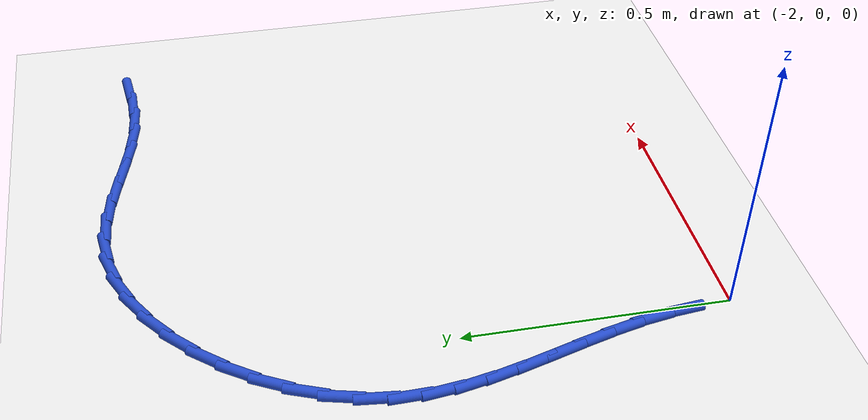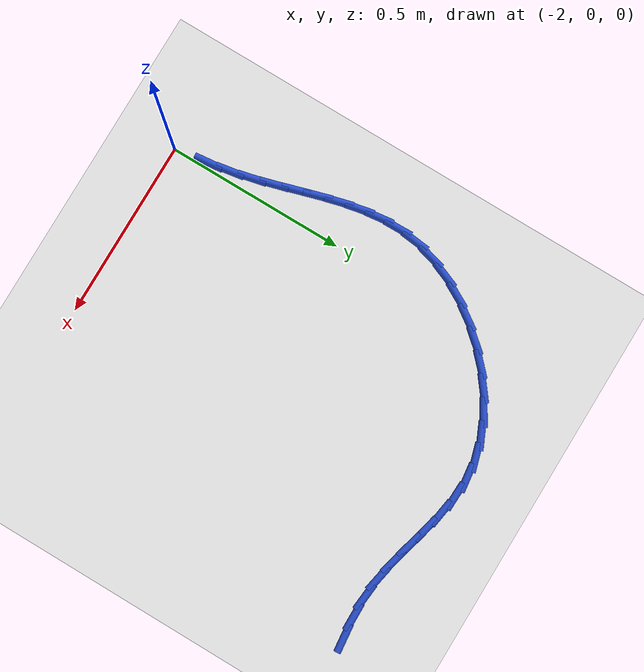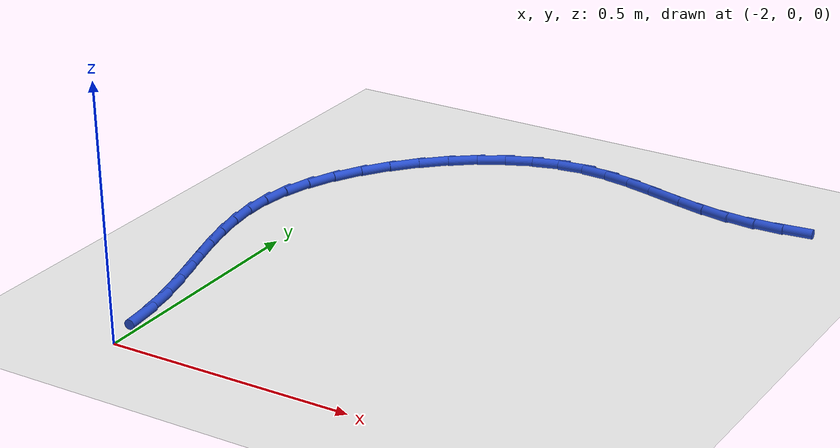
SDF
<sdf version="1.6">
 <world name="default">
  <model name="ground_plane">
   <static>1</static>
   <link name="link">
    <collision name="collision">
     <geometry><plane><normal>0 0 1</normal><size>100 100</size></plane></geometry>
     <surface><friction><ode><mu>100</mu><mu2>50</mu2></ode></friction></surface>
    </collision>
    <visual name="visual">
     <cast_shadows>0</cast_shadows>
     <geometry><plane><normal>0 0 1</normal><size>100 100</size></plane></geometry>
     <material>
      <script><uri>file://media/materials/scripts/gazebo.material</uri><name>Gazebo/WhiteGlow</name></script>
     </material>
    </visual>
   </link>
  </model>
  <model name="line">
   <link name="link_31">
    <pose>-1.137741604532638 1.039188508452282 0.01 0 1.57 0.10335012758137246</pose>
    <collision name="collision">
     <geometry><cylinder><radius>0.01</radius><length>0.08</length></cylinder></geometry>
    </collision>
    <visual name="visual">
     <material>
      <script><name>Gazebo/Blue</name><uri>file://media/materials/scripts/gazebo.material</uri></script>
     </material>
     <geometry><cylinder><radius>0.01</radius><length>0.08</length></cylinder></geometry>
    </visual>
   </link>
   <link name="link_32">
    <pose>-1.1969148215525718 1.0330510815530156 0.01 0 1.57 0.017549319328291096</pose>
    <collision name="collision">
     <geometry><cylinder><radius>0.01</radius><length>0.08</length></cylinder></geometry>
    </collision>
    <visual name="visual">
     <material>
      <script><name>Gazebo/Blue</name><uri>file://media/materials/scripts/gazebo.material</uri></script>
     </material>
     <geometry><cylinder><radius>0.01</radius><length>0.08</length></cylinder></geometry>
    </visual>
   </link>
   <link name="link_33">
    <pose>-1.255742268676193 1.0320185939012951 0.01 0 1.57 -0.09216025055007221</pose>
    <collision name="collision">
     <geometry><cylinder><radius>0.01</radius><length>0.08</length></cylinder></geometry>
    </collision>
    <visual name="visual">
     <material>
      <script><name>Gazebo/Blue</name><uri>file://media/materials/scripts/gazebo.material</uri></script>
     </material>
     <geometry><cylinder><radius>0.01</radius><length>0.08</length></cylinder></geometry>
    </visual>
   </link>
   <link name="link_34">
    <pose>-1.3139873943791713 1.0374017284884665 0.01 0 1.57 -0.1892157656551599</pose>
    <collision name="collision">
     <geometry><cylinder><radius>0.01</radius><length>0.08</length></cylinder></geometry>
    </collision>
    <visual name="visual">
     <material>
      <script><name>Gazebo/Blue</name><uri>file://media/materials/scripts/gazebo.material</uri></script>
     </material>
     <geometry><cylinder><radius>0.01</radius><length>0.08</length></cylinder></geometry>
    </visual>
   </link>
   <link name="link_35">
    <pose>-1.3716159554920813 1.0484379851633696 0.01 0 1.57 -0.24377706209478078</pose>
    <collision name="collision">
     <geometry><cylinder><radius>0.01</radius><length>0.08</length></cylinder></geometry>
    </collision>
    <visual name="visual">
     <material>
      <script><name>Gazebo/Blue</name><uri>file://media/materials/scripts/gazebo.material</uri></script>
     </material>
     <geometry><cylinder><radius>0.01</radius><length>0.08</length></cylinder></geometry>
    </visual>
   </link>
   <link name="link_36">
    <pose>-1.4287609250467634 1.062651292381387 0.01 0 1.57 -0.2559341354734553</pose>
    <collision name="collision">
     <geometry><cylinder><radius>0.01</radius><length>0.08</length></cylinder></geometry>
    </collision>
    <visual name="visual">
     <material>
      <script><name>Gazebo/Blue</name><uri>file://media/materials/scripts/gazebo.material</uri></script>
     </material>
     <geometry><cylinder><radius>0.01</radius><length>0.08</length></cylinder></geometry>
    </visual>
   </link>
   <link name="link_37">
    <pose>-1.4855602963114591 1.0775141330237372 0.01 0 1.57 -0.22554388001280945</pose>
    <collision name="collision">
     <geometry><cylinder><radius>0.01</radius><length>0.08</length></cylinder></geometry>
    </collision>
    <visual name="visual">
     <material>
      <script><name>Gazebo/Blue</name><uri>file://media/materials/scripts/gazebo.material</uri></script>
     </material>
     <geometry><cylinder><radius>0.01</radius><length>0.08</length></cylinder></geometry>
    </visual>
   </link>
   <link name="link_38">
    <pose>-1.5421520625544094 1.090498989971639 0.01 0 1.57 -0.15063764705388685</pose>
    <collision name="collision">
     <geometry><cylinder><radius>0.01</radius><length>0.08</length></cylinder></geometry>
    </collision>
    <visual name="visual">
     <material>
      <script><name>Gazebo/Blue</name><uri>file://media/materials/scripts/gazebo.material</uri></script>
     </material>
     <geometry><cylinder><radius>0.01</radius><length>0.08</length></cylinder></geometry>
    </visual>
   </link>
   <link name="link_39">
    <pose>-1.598674217043856 1.0990783461063123 0.01 0 1.57 -0.029083908628776443</pose>
    <collision name="collision">
     <geometry><cylinder><radius>0.01</radius><length>0.08</length></cylinder></geometry>
    </collision>
    <visual name="visual">
     <material>
      <script><name>Gazebo/Blue</name><uri>file://media/materials/scripts/gazebo.material</uri></script>
     </material>
     <geometry><cylinder><radius>0.01</radius><length>0.08</length></cylinder></geometry>
    </visual>
   </link>
   <link name="link_40">
    <pose>-1.6552647530480398 1.1007246843089753 0.01 0 1.57 0.1321388955263723</pose>
    <collision name="collision">
     <geometry><cylinder><radius>0.01</radius><length>0.08</length></cylinder></geometry>
    </collision>
    <visual name="visual">
     <material>
      <script><name>Gazebo/Blue</name><uri>file://media/materials/scripts/gazebo.material</uri></script>
     </material>
     <geometry><cylinder><radius>0.01</radius><length>0.08</length></cylinder></geometry>
    </visual>
   </link>
   <link name="link_41">
    <pose>-1.7119844299706246 1.0931858801166556 0.01 0 1.57 0.289931894746646</pose>
    <collision name="collision">
     <geometry><cylinder><radius>0.01</radius><length>0.08</length></cylinder></geometry>
    </collision>
    <visual name="visual">
     <material>
      <script><name>Gazebo/Blue</name><uri>file://media/materials/scripts/gazebo.material</uri></script>
     </material>
     <geometry><cylinder><radius>0.01</radius><length>0.08</length></cylinder></geometry>
    </visual>
   </link>
   <link name="link_42">
    <pose>-1.7682825818912509 1.0763899672745911 0.01 0 1.57 0.4277133986426459</pose>
    <collision name="collision">
     <geometry><cylinder><radius>0.01</radius><length>0.08</length></cylinder></geometry>
    </collision>
    <visual name="visual">
     <material>
      <script><name>Gazebo/Blue</name><uri>file://media/materials/scripts/gazebo.material</uri></script>
     </material>
     <geometry><cylinder><radius>0.01</radius><length>0.08</length></cylinder></geometry>
    </visual>
   </link>
   <link name="link_43">
    <pose>-1.8233177576571955 1.051301831922351 0.01 0 1.57 0.5494247786139049</pose>
    <collision name="collision">
     <geometry><cylinder><radius>0.01</radius><length>0.08</length></cylinder></geometry>
    </collision>
    <visual name="visual">
     <material>
      <script><name>Gazebo/Blue</name><uri>file://media/materials/scripts/gazebo.material</uri></script>
     </material>
     <geometry><cylinder><radius>0.01</radius><length>0.08</length></cylinder></geometry>
    </visual>
   </link>
   <link name="link_44">
    <pose>-1.876246734940053 1.0188926756775336 0.01 0 1.57 0.6596202401362196</pose>
    <collision name="collision">
     <geometry><cylinder><radius>0.01</radius><length>0.08</length></cylinder></geometry>
    </collision>
    <visual name="visual">
     <material>
      <script><name>Gazebo/Blue</name><uri>file://media/materials/scripts/gazebo.material</uri></script>
     </material>
     <geometry><cylinder><radius>0.01</radius><length>0.08</length></cylinder></geometry>
    </visual>
   </link>
   <link name="link_45">
    <pose>-1.9262262914114174 0.9801337001577348 0.01 0 1.57 0.7627136373137245</pose>
    <collision name="collision">
     <geometry><cylinder><radius>0.01</radius><length>0.08</length></cylinder></geometry>
    </collision>
    <visual name="visual">
     <material>
      <script><name>Gazebo/Blue</name><uri>file://media/materials/scripts/gazebo.material</uri></script>
     </material>
     <geometry><cylinder><radius>0.01</radius><length>0.08</length></cylinder></geometry>
    </visual>
   </link>
   <link name="link_46">
    <pose>-1.9724132047428848 0.9359961069805531 0.01 0 1.57 0.8628706237281559</pose>
    <collision name="collision">
     <geometry><cylinder><radius>0.01</radius><length>0.08</length></cylinder></geometry>
    </collision>
    <visual name="visual">
     <material>
      <script><name>Gazebo/Blue</name><uri>file://media/materials/scripts/gazebo.material</uri></script>
     </material>
     <geometry><cylinder><radius>0.01</radius><length>0.08</length></cylinder></geometry>
    </visual>
   </link>
   <link name="link_47">
    <pose>-2.01396425260605 0.887451097763585 0.01 0 1.57 0.9641476410529625</pose>
    <collision name="collision">
     <geometry><cylinder><radius>0.01</radius><length>0.08</length></cylinder></geometry>
    </collision>
    <visual name="visual">
     <material>
      <script><name>Gazebo/Blue</name><uri>file://media/materials/scripts/gazebo.material</uri></script>
     </material>
     <geometry><cylinder><radius>0.01</radius><length>0.08</length></cylinder></geometry>
    </visual>
   </link>
   <link name="link_48">
    <pose>-2.0500362126725067 0.8354698741244274 0.01 0 1.57 1.070718030847716</pose>
    <collision name="collision">
     <geometry><cylinder><radius>0.01</radius><length>0.08</length></cylinder></geometry>
    </collision>
    <visual name="visual">
     <material>
      <script><name>Gazebo/Blue</name><uri>file://media/materials/scripts/gazebo.material</uri></script>
     </material>
     <geometry><cylinder><radius>0.01</radius><length>0.08</length></cylinder></geometry>
    </visual>
   </link>
   <link name="link_49">
    <pose>-2.0797858626138503 0.7810236376806785 0.01 0 1.57 1.1870871500699545</pose>
    <collision name="collision">
     <geometry><cylinder><radius>0.01</radius><length>0.08</length></cylinder></geometry>
    </collision>
    <visual name="visual">
     <material>
      <script><name>Gazebo/Blue</name><uri>file://media/materials/scripts/gazebo.material</uri></script>
     </material>
     <geometry><cylinder><radius>0.01</radius><length>0.08</length></cylinder></geometry>
    </visual>
   </link>
   <link name="link_50">
    <pose>-2.1023699801016766 0.7250835900499345 0.01 0 1.57 1.3181694379027875</pose>
    <collision name="collision">
     <geometry><cylinder><radius>0.01</radius><length>0.08</length></cylinder></geometry>
    </collision>
    <visual name="visual">
     <material>
      <script><name>Gazebo/Blue</name><uri>file://media/materials/scripts/gazebo.material</uri></script>
     </material>
     <geometry><cylinder><radius>0.01</radius><length>0.08</length></cylinder></geometry>
    </visual>
   </link>
   <link name="link_51">
    <pose>-2.1169453642786635 0.6686209219575349 0.01 0 1.57 1.4619917857292566</pose>
    <collision name="collision">
     <geometry><cylinder><radius>0.01</radius><length>0.08</length></cylinder></geometry>
    </collision>
    <visual name="visual">
     <material>
      <script><name>Gazebo/Blue</name><uri>file://media/materials/scripts/gazebo.material</uri></script>
     </material>
     <geometry><cylinder><radius>0.01</radius><length>0.08</length></cylinder></geometry>
    </visual>
   </link>
   <link name="link_52">
    <pose>-2.123087307980669 0.6123945227139441 0.01 0 1.57 -1.548921061706147</pose>
    <collision name="collision">
     <geometry><cylinder><radius>0.01</radius><length>0.08</length></cylinder></geometry>
    </collision>
    <visual name="visual">
     <material>
      <script><name>Gazebo/Blue</name><uri>file://media/materials/scripts/gazebo.material</uri></script>
     </material>
     <geometry><cylinder><radius>0.01</radius><length>0.08</length></cylinder></geometry>
    </visual>
   </link>
   <link name="link_53">
    <pose>-2.1218623655697546 0.5564067662098786 0.01 0 1.57 -1.442853335138481</pose>
    <collision name="collision">
     <geometry><cylinder><radius>0.01</radius><length>0.08</length></cylinder></geometry>
    </collision>
    <visual name="visual">
     <material>
      <script><name>Gazebo/Blue</name><uri>file://media/materials/scripts/gazebo.material</uri></script>
     </material>
     <geometry><cylinder><radius>0.01</radius><length>0.08</length></cylinder></geometry>
    </visual>
   </link>
   <link name="link_54">
    <pose>-2.114669117959303 0.5004915896122262 0.01 0 1.57 -1.3637844092763327</pose>
    <collision name="collision">
     <geometry><cylinder><radius>0.01</radius><length>0.08</length></cylinder></geometry>
    </collision>
    <visual name="visual">
     <material>
      <script><name>Gazebo/Blue</name><uri>file://media/materials/scripts/gazebo.material</uri></script>
     </material>
     <geometry><cylinder><radius>0.01</radius><length>0.08</length></cylinder></geometry>
    </visual>
   </link>
   <link name="link_55">
    <pose>-2.1029061460626974 0.44448293008787626 0.01 0 1.57 -1.3113680212519834</pose>
    <collision name="collision">
     <geometry><cylinder><radius>0.01</radius><length>0.08</length></cylinder></geometry>
    </collision>
    <visual name="visual">
     <material>
      <script><name>Gazebo/Blue</name><uri>file://media/materials/scripts/gazebo.material</uri></script>
     </material>
     <geometry><cylinder><radius>0.01</radius><length>0.08</length></cylinder></geometry>
    </visual>
   </link>
   <link name="link_56">
    <pose>-2.0879720307933214 0.38821472480371677 0.01 0 1.57 -1.2842250366272352</pose>
    <collision name="collision">
     <geometry><cylinder><radius>0.01</radius><length>0.08</length></cylinder></geometry>
    </collision>
    <visual name="visual">
     <material>
      <script><name>Gazebo/Blue</name><uri>file://media/materials/scripts/gazebo.material</uri></script>
     </material>
     <geometry><cylinder><radius>0.01</radius><length>0.08</length></cylinder></geometry>
    </visual>
   </link>
   <link name="link_57">
    <pose>-2.071265353064558 0.33152091092663705 0.01 0 1.57 -1.2810217427040105</pose>
    <collision name="collision">
     <geometry><cylinder><radius>0.01</radius><length>0.08</length></cylinder></geometry>
    </collision>
    <visual name="visual">
     <material>
      <script><name>Gazebo/Blue</name><uri>file://media/materials/scripts/gazebo.material</uri></script>
     </material>
     <geometry><cylinder><radius>0.01</radius><length>0.08</length></cylinder></geometry>
    </visual>
   </link>
   <link name="link_58">
    <pose>-2.0541846937897903 0.27423542562352515 0.01 0 1.57 -1.3009223266963876</pose>
    <collision name="collision">
     <geometry><cylinder><radius>0.01</radius><length>0.08</length></cylinder></geometry>
    </collision>
    <visual name="visual">
     <material>
      <script><name>Gazebo/Blue</name><uri>file://media/materials/scripts/gazebo.material</uri></script>
     </material>
     <geometry><cylinder><radius>0.01</radius><length>0.08</length></cylinder></geometry>
    </visual>
   </link>
   <link name="link_59">
    <pose>-2.038128633882403 0.2161922060612704 0.01 0 1.57 -1.3435932714970562</pose>
    <collision name="collision">
     <geometry><cylinder><radius>0.01</radius><length>0.08</length></cylinder></geometry>
    </collision>
    <visual name="visual">
     <material>
      <script><name>Gazebo/Blue</name><uri>file://media/materials/scripts/gazebo.material</uri></script>
     </material>
     <geometry><cylinder><radius>0.01</radius><length>0.08</length></cylinder></geometry>
    </visual>
   </link>
   <link name="link_60">
    <pose>-2.0244957542557778 0.15722518940676072 0.01 0 1.57 -1.4062619928472602</pose>
    <collision name="collision">
     <geometry><cylinder><radius>0.01</radius><length>0.08</length></cylinder></geometry>
    </collision>
    <visual name="visual">
     <material>
      <script><name>Gazebo/Blue</name><uri>file://media/materials/scripts/gazebo.material</uri></script>
     </material>
     <geometry><cylinder><radius>0.01</radius><length>0.08</length></cylinder></geometry>
    </visual>
   </link>
   <link name="link_61">
    <pose>-2.0145303220411748 0.09720523669734618 0.01 0 1.57 -1.4653043942325448</pose>
    <collision name="collision">
     <geometry><cylinder><radius>0.01</radius><length>0.08</length></cylinder></geometry>
    </collision>
    <visual name="visual">
     <material>
      <script><name>Gazebo/Blue</name><uri>file://media/materials/scripts/gazebo.material</uri></script>
     </material>
     <geometry><cylinder><radius>0.01</radius><length>0.08</length></cylinder></geometry>
    </visual>
   </link>
  </model>
 </world>
</sdf>
